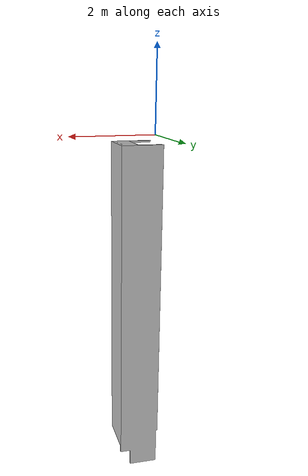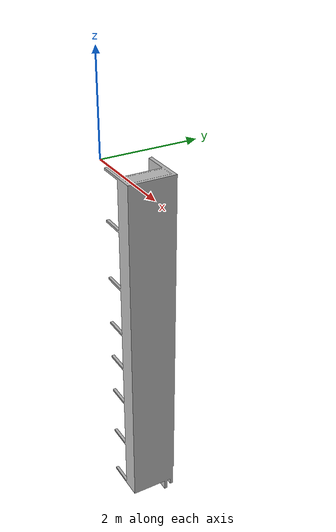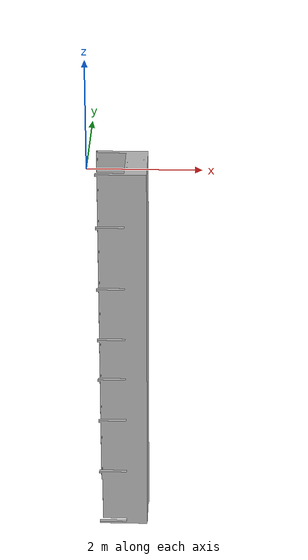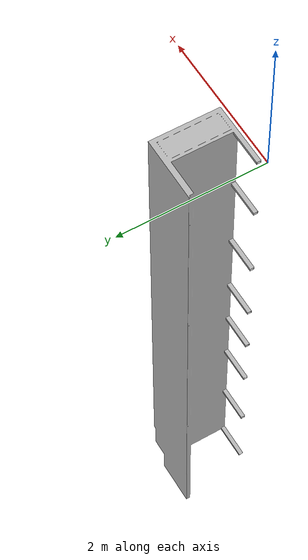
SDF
<?xml version="1.0" ?>
<sdf version="1.6">
  <model name="sidelong_table_right">
    <pose>0 0 0 0 0 0</pose>
    <static>true</static>
    <link name="body">
      <visual name="visual">
        <geometry>
          <mesh><uri>model://sidelong_table_right/meshes/sidelong_table_right.dae</uri></mesh>
        </geometry>
      </visual>
      <collision name="collision">
        <geometry>
	  <mesh><uri>model://sidelong_table_right/meshes/sidelong_table_right.dae</uri></mesh>
        </geometry>
      </collision>
    </link>
  </model>
</sdf>
